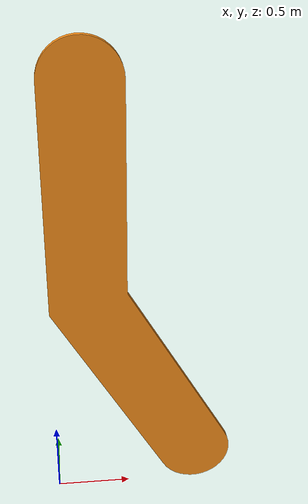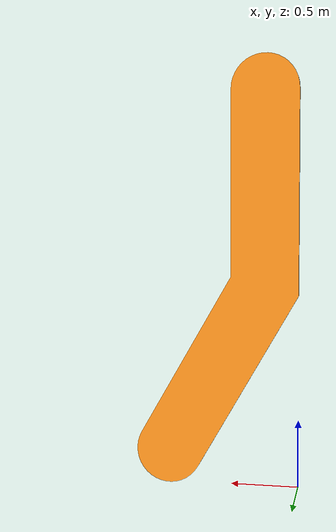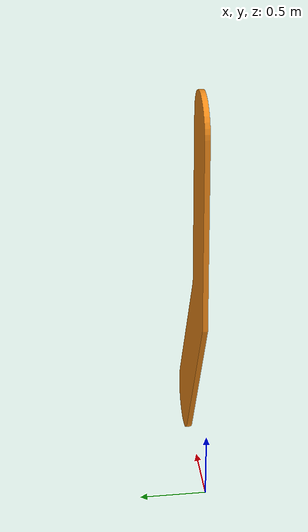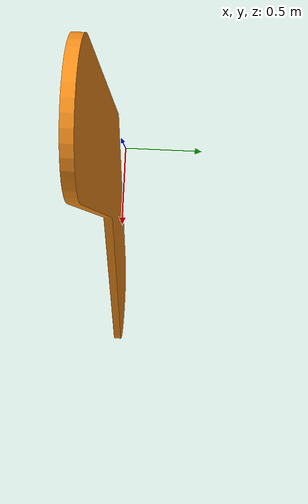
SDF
<?xml version="1.0" ?>
<sdf version="1.6">
  <model name="30deg">
    <static>true</static>
    <link name="link">
      <collision name="collision">
        <geometry>
          <mesh>
            <scale>1 1 1</scale>
            <uri>model://30deg/meshes/30deg.dae</uri>
          </mesh>
        </geometry>
      </collision>
      <visual name="visual">
        <geometry>
          <mesh>
            <scale>1 1 1</scale>
            <uri>model://30deg/meshes/30deg.dae</uri>
          </mesh>
        </geometry>
	<material>
	  <script>
            <uri>file://media/materials/scripts/gazebo.material</uri>
	    <name>Gazebo/Orange</name>
	  </script>
	</material>
      </visual>
    </link>
  </model>
</sdf>
